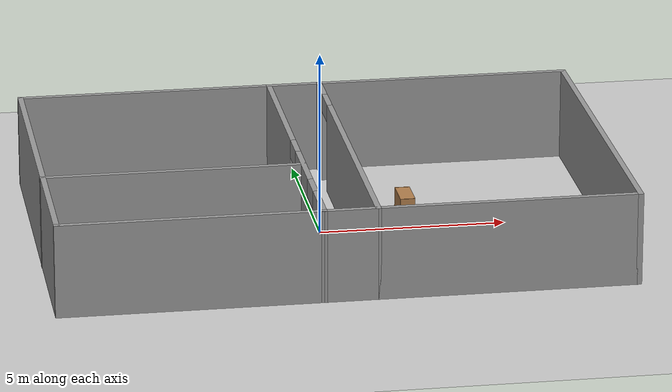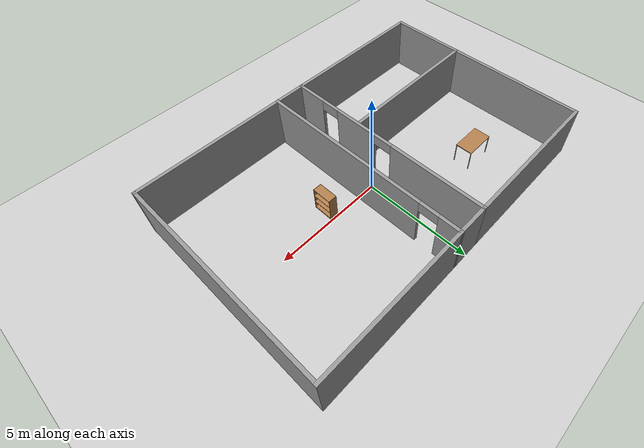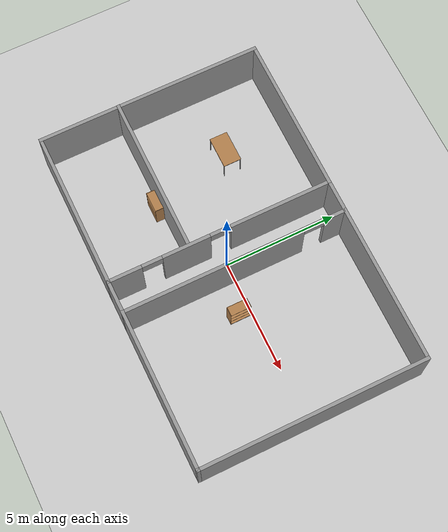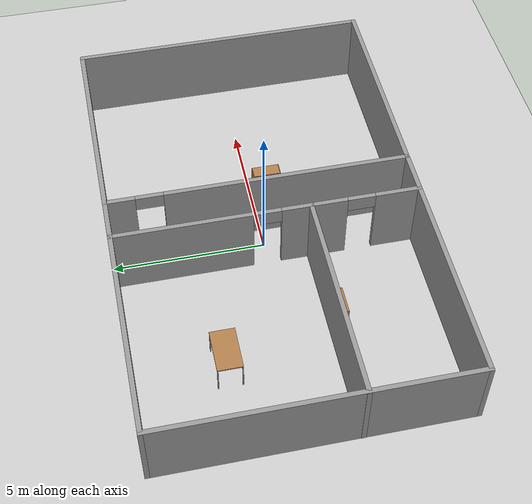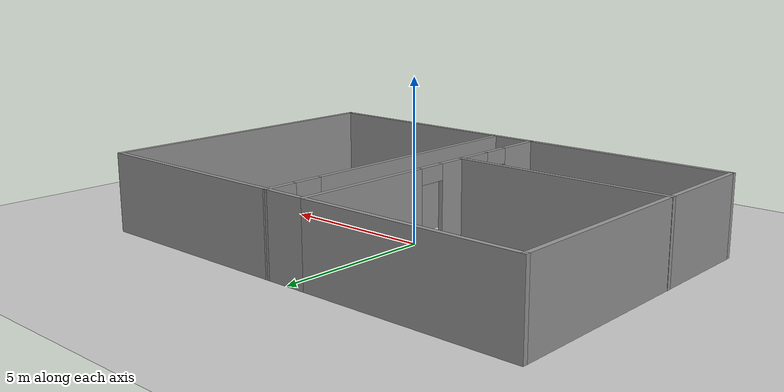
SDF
<sdf version="1.6">
 <world name="default">
  <light name="sun" type="directional">
   <pose>0 0 10 0 -0 0</pose>
   <diffuse>0.8 0.8 0.8 1</diffuse>
   <specular>0.1 0.1 0.1 1</specular>
   <attenuation>
    <range>1000</range>
    <constant>0.9</constant>
    <linear>0.01</linear>
    <quadratic>0.001</quadratic>
   </attenuation>
   <direction>-0.5 0.5 -1</direction>
  </light>
  <model name="ground_plane">
   <static>1</static>
   <link name="link">
    <collision name="collision">
     <geometry><plane><normal>0 0 1</normal><size>100 100</size></plane></geometry>
     <surface><friction><ode><mu>100</mu><mu2>50</mu2></ode></friction></surface>
    </collision>
    <visual name="visual">
     <cast_shadows>0</cast_shadows>
     <geometry><plane><normal>0 0 1</normal><size>100 100</size></plane></geometry>
     <material>
      <script><uri>file://media/materials/scripts/gazebo.material</uri><name>Gazebo/Grey</name></script>
     </material>
    </visual>
   </link>
  </model>
  <gravity>0 0 -9.8</gravity>
  <magnetic_field>6e-06 2.3e-05 -4.2e-05</magnetic_field>
  <atmosphere type="adiabatic"/>
  <physics name="default_physics" default="0" type="ode">
   <max_step_size>0.001</max_step_size>
   <real_time_factor>1</real_time_factor>
   <real_time_update_rate>1000</real_time_update_rate>
  </physics>
  <scene><ambient>0.4 0.4 0.4 1</ambient><background>0.7 0.7 0.7 1</background><shadows>1</shadows></scene>
  <spherical_coordinates>
   <surface_model>EARTH_WGS84</surface_model>
   <latitude_deg>0</latitude_deg>
   <longitude_deg>0</longitude_deg>
   <elevation>0</elevation>
   <heading_deg>0</heading_deg>
  </spherical_coordinates>
  <model name="large_rooms">
   <pose>0.046671 0.023596 0 0 -0 0</pose>
   <link name="Wall_15">
    <pose>-0.693998 -0.00105 0 0 0 -1.57083</pose>
    <visual name="Wall_15_Visual_0">
     <pose>-2.72597 0 1.25 0 -0 0</pose>
     <geometry><box><size>4.54806 0.15 2.5</size></box></geometry>
     <material>
      <script><uri>file://media/materials/scripts/gazebo.material</uri><name>Gazebo/Grey</name></script>
      <ambient>1 1 1 1</ambient>
     </material>
    </visual>
    <collision name="Wall_15_Collision_0">
     <geometry><box><size>4.54806 0.15 2.5</size></box></geometry>
     <pose>-2.72597 0 1.25 0 -0 0</pose>
    </collision>
    <visual name="Wall_15_Visual_1">
     <pose>1.51228 0 1.25 0 -0 0</pose>
     <geometry><box><size>2.12844 0.15 2.5</size></box></geometry>
     <material>
      <script><uri>file://media/materials/scripts/gazebo.material</uri><name>Gazebo/Grey</name></script>
      <ambient>1 1 1 1</ambient>
     </material>
    </visual>
    <collision name="Wall_15_Collision_1">
     <geometry><box><size>2.12844 0.15 2.5</size></box></geometry>
     <pose>1.51228 0 1.25 0 -0 0</pose>
    </collision>
    <visual name="Wall_15_Visual_2">
     <pose>4.23825 0 1.25 0 -0 0</pose>
     <geometry><box><size>1.5235 0.15 2.5</size></box></geometry>
     <material>
      <script><uri>file://media/materials/scripts/gazebo.material</uri><name>Gazebo/Grey</name></script>
      <ambient>1 1 1 1</ambient>
     </material>
    </visual>
    <collision name="Wall_15_Collision_2">
     <geometry><box><size>1.5235 0.15 2.5</size></box></geometry>
     <pose>4.23825 0 1.25 0 -0 0</pose>
    </collision>
    <visual name="Wall_15_Visual_3">
     <pose>-0.001938 0 2.25 0 -0 0</pose>
     <geometry><box><size>0.9 0.15 0.5</size></box></geometry>
     <material>
      <script><uri>file://media/materials/scripts/gazebo.material</uri><name>Gazebo/Grey</name></script>
      <ambient>1 1 1 1</ambient>
     </material>
    </visual>
    <collision name="Wall_15_Collision_3">
     <geometry><box><size>0.9 0.15 0.5</size></box></geometry>
     <pose>-0.001938 0 2.25 0 -0 0</pose>
    </collision>
    <visual name="Wall_15_Visual_4">
     <pose>3.0265 0 2.25 0 -0 0</pose>
     <geometry><box><size>0.9 0.15 0.5</size></box></geometry>
     <material>
      <script><uri>file://media/materials/scripts/gazebo.material</uri><name>Gazebo/Grey</name></script>
      <ambient>1 1 1 1</ambient>
     </material>
    </visual>
    <collision name="Wall_15_Collision_4">
     <geometry><box><size>0.9 0.15 0.5</size></box></geometry>
     <pose>3.0265 0 2.25 0 -0 0</pose>
    </collision>
   </link>
   <link name="Wall_17">
    <pose>0.703787 0.001137 0 0 -0 1.5708</pose>
    <visual name="Wall_17_Visual_0">
     <pose>-0.967925 0 1.25 0 -0 0</pose>
     <geometry><box><size>8.06415 0.15 2.5</size></box></geometry>
     <material>
      <script><uri>file://media/materials/scripts/gazebo.material</uri><name>Gazebo/Grey</name></script>
      <ambient>1 1 1 1</ambient>
     </material>
    </visual>
    <collision name="Wall_17_Collision_0">
     <geometry><box><size>8.06415 0.15 2.5</size></box></geometry>
     <pose>-0.967925 0 1.25 0 -0 0</pose>
    </collision>
    <visual name="Wall_17_Visual_1">
     <pose>4.48208 0 1.25 0 -0 0</pose>
     <geometry><box><size>1.03585 0.15 2.5</size></box></geometry>
     <material>
      <script><uri>file://media/materials/scripts/gazebo.material</uri><name>Gazebo/Grey</name></script>
      <ambient>1 1 1 1</ambient>
     </material>
    </visual>
    <collision name="Wall_17_Collision_1">
     <geometry><box><size>1.03585 0.15 2.5</size></box></geometry>
     <pose>4.48208 0 1.25 0 -0 0</pose>
    </collision>
    <visual name="Wall_17_Visual_2">
     <pose>3.51415 0 2.25 0 -0 0</pose>
     <geometry><box><size>0.9 0.15 0.5</size></box></geometry>
     <material>
      <script><uri>file://media/materials/scripts/gazebo.material</uri><name>Gazebo/Grey</name></script>
      <ambient>1 1 1 1</ambient>
     </material>
    </visual>
    <collision name="Wall_17_Collision_2">
     <geometry><box><size>0.9 0.15 0.5</size></box></geometry>
     <pose>3.51415 0 2.25 0 -0 0</pose>
    </collision>
   </link>
   <link name="Wall_19">
    <collision name="Wall_19_Collision">
     <geometry><box><size>1.5476 0.15 2.5</size></box></geometry>
     <pose>0 0 1.25 0 -0 0</pose>
    </collision>
    <visual name="Wall_19_Visual">
     <pose>0 0 1.25 0 -0 0</pose>
     <geometry><box><size>1.5476 0.15 2.5</size></box></geometry>
     <material>
      <script><uri>file://media/materials/scripts/gazebo.material</uri><name>Gazebo/Grey</name></script>
      <ambient>1 1 1 1</ambient>
     </material>
    </visual>
    <pose>0.004804 -4.925 0 0 -0 0.001621</pose>
   </link>
   <link name="Wall_21">
    <collision name="Wall_21_Collision">
     <geometry><box><size>1.5476 0.15 2.5</size></box></geometry>
     <pose>0 0 1.25 0 -0 0</pose>
    </collision>
    <visual name="Wall_21_Visual">
     <pose>0 0 1.25 0 -0 0</pose>
     <geometry><box><size>1.5476 0.15 2.5</size></box></geometry>
     <material>
      <script><uri>file://media/materials/scripts/gazebo.material</uri><name>Gazebo/Grey</name></script>
      <ambient>1 1 1 1</ambient>
     </material>
    </visual>
    <pose>0.004985 4.92508 0 0 -0 0.001508</pose>
   </link>
   <link name="Wall_23">
    <collision name="Wall_23_Collision">
     <geometry><box><size>7 0.15 2.5</size></box></geometry>
     <pose>0 0 1.25 0 -0 0</pose>
    </collision>
    <visual name="Wall_23_Visual">
     <pose>0 0 1.25 0 -0 0</pose>
     <geometry><box><size>7 0.15 2.5</size></box></geometry>
     <material>
      <script><uri>file://media/materials/scripts/gazebo.material</uri><name>Gazebo/Grey</name></script>
      <ambient>1 1 1 1</ambient>
     </material>
    </visual>
    <pose>4.12879 4.92614 0 0 -0 0</pose>
   </link>
   <link name="Wall_26">
    <collision name="Wall_26_Collision">
     <geometry><box><size>7 0.15 2.5</size></box></geometry>
     <pose>0 0 1.25 0 -0 0</pose>
    </collision>
    <visual name="Wall_26_Visual">
     <pose>0 0 1.25 0 -0 0</pose>
     <geometry><box><size>7 0.15 2.5</size></box></geometry>
     <material>
      <script><uri>file://media/materials/scripts/gazebo.material</uri><name>Gazebo/Grey</name></script>
      <ambient>1 1 1 1</ambient>
     </material>
    </visual>
    <pose>4.12879 -4.92386 0 0 -0 0</pose>
   </link>
   <link name="Wall_28">
    <collision name="Wall_28_Collision">
     <geometry><box><size>10 0.15 2.5</size></box></geometry>
     <pose>0 0 1.25 0 -0 0</pose>
    </collision>
    <visual name="Wall_28_Visual">
     <pose>0 0 1.25 0 -0 0</pose>
     <geometry><box><size>10 0.15 2.5</size></box></geometry>
     <material>
      <script><uri>file://media/materials/scripts/gazebo.material</uri><name>Gazebo/Grey</name></script>
      <ambient>1 1 1 1</ambient>
     </material>
    </visual>
    <pose>7.55379 0.001137 0 0 0 -1.5708</pose>
   </link>
   <link name="Wall_30">
    <collision name="Wall_30_Collision">
     <geometry><box><size>7 0.15 2.5</size></box></geometry>
     <pose>0 0 1.25 0 -0 0</pose>
    </collision>
    <visual name="Wall_30_Visual">
     <pose>0 0 1.25 0 -0 0</pose>
     <geometry><box><size>7 0.15 2.5</size></box></geometry>
     <material>
      <script><uri>file://media/materials/scripts/gazebo.material</uri><name>Gazebo/Grey</name></script>
      <ambient>1 1 1 1</ambient>
     </material>
    </visual>
    <pose>-4.11918 -4.92613 0 0 -0 3.14159</pose>
   </link>
   <link name="Wall_32">
    <collision name="Wall_32_Collision">
     <geometry><box><size>7 0.15 2.5</size></box></geometry>
     <pose>0 0 1.25 0 -0 0</pose>
    </collision>
    <visual name="Wall_32_Visual">
     <pose>0 0 1.25 0 -0 0</pose>
     <geometry><box><size>7 0.15 2.5</size></box></geometry>
     <material>
      <script><uri>file://media/materials/scripts/gazebo.material</uri><name>Gazebo/Grey</name></script>
      <ambient>1 1 1 1</ambient>
     </material>
    </visual>
    <pose>-4.11882 4.92403 0 0 -0 3.14159</pose>
   </link>
   <link name="Wall_33">
    <collision name="Wall_33_Collision">
     <geometry><box><size>10 0.15 2.5</size></box></geometry>
     <pose>0 0 1.25 0 -0 0</pose>
    </collision>
    <visual name="Wall_33_Visual">
     <pose>0 0 1.25 0 -0 0</pose>
     <geometry><box><size>10 0.15 2.5</size></box></geometry>
     <material>
      <script><uri>file://media/materials/scripts/gazebo.material</uri><name>Gazebo/Grey</name></script>
      <ambient>1 1 1 1</ambient>
     </material>
    </visual>
    <pose>-7.54382 -0.00097 0 0 0 -1.5708</pose>
   </link>
   <link name="Wall_35">
    <collision name="Wall_35_Collision">
     <geometry><box><size>7 0.15 2.5</size></box></geometry>
     <pose>0 0 1.25 0 -0 0</pose>
    </collision>
    <visual name="Wall_35_Visual">
     <pose>0 0 1.25 0 -0 0</pose>
     <geometry><box><size>7 0.15 2.5</size></box></geometry>
     <material>
      <script><uri>file://media/materials/scripts/gazebo.material</uri><name>Gazebo/Grey</name></script>
      <ambient>1 1 1 1</ambient>
     </material>
    </visual>
    <pose>-4.12879 -1.40389 0 0 -0 0</pose>
   </link>
   <static>1</static>
  </model>
  <model name="bookshelf">
   <static>1</static>
   <link name="link">
    <inertial><mass>1</mass></inertial>
    <collision name="back">
     <pose>0 0.005 0.6 0 -0 0</pose>
     <geometry><box><size>0.9 0.01 1.2</size></box></geometry>
    </collision>
    <visual name="visual1">
     <pose>0 0.005 0.6 0 -0 0</pose>
     <geometry><box><size>0.9 0.01 1.2</size></box></geometry>
     <material>
      <script><uri>file://media/materials/scripts/gazebo.material</uri><name>Gazebo/Wood</name></script>
     </material>
    </visual>
    <collision name="left_side">
     <pose>0.45 -0.195 0.6 0 -0 0</pose>
     <geometry><box><size>0.02 0.4 1.2</size></box></geometry>
    </collision>
    <visual name="visual2">
     <pose>0.45 -0.195 0.6 0 -0 0</pose>
     <geometry><box><size>0.02 0.4 1.2</size></box></geometry>
     <material>
      <script><uri>file://media/materials/scripts/gazebo.material</uri><name>Gazebo/Wood</name></script>
     </material>
    </visual>
    <collision name="right_side">
     <pose>-0.45 -0.195 0.6 0 -0 0</pose>
     <geometry><box><size>0.02 0.4 1.2</size></box></geometry>
    </collision>
    <visual name="visual3">
     <pose>-0.45 -0.195 0.6 0 -0 0</pose>
     <geometry><box><size>0.02 0.4 1.2</size></box></geometry>
     <material>
      <script><uri>file://media/materials/scripts/gazebo.material</uri><name>Gazebo/Wood</name></script>
     </material>
    </visual>
    <collision name="bottom">
     <pose>0 -0.195 0.03 0 -0 0</pose>
     <geometry><box><size>0.88 0.4 0.06</size></box></geometry>
    </collision>
    <visual name="visual4">
     <pose>0 -0.195 0.03 0 -0 0</pose>
     <geometry><box><size>0.88 0.4 0.06</size></box></geometry>
     <material>
      <script><uri>file://media/materials/scripts/gazebo.material</uri><name>Gazebo/Wood</name></script>
     </material>
    </visual>
    <collision name="top">
     <pose>0 -0.195 1.19 0 -0 0</pose>
     <geometry><box><size>0.88 0.4 0.02</size></box></geometry>
    </collision>
    <visual name="visual5">
     <pose>0 -0.195 1.19 0 -0 0</pose>
     <geometry><box><size>0.88 0.4 0.02</size></box></geometry>
     <material>
      <script><uri>file://media/materials/scripts/gazebo.material</uri><name>Gazebo/Wood</name></script>
     </material>
    </visual>
    <collision name="low_shelf">
     <pose>0 -0.195 0.43 0 -0 0</pose>
     <geometry><box><size>0.88 0.4 0.02</size></box></geometry>
    </collision>
    <visual name="visual6">
     <pose>0 -0.195 0.43 0 -0 0</pose>
     <geometry><box><size>0.88 0.4 0.02</size></box></geometry>
     <material>
      <script><uri>file://media/materials/scripts/gazebo.material</uri><name>Gazebo/Wood</name></script>
     </material>
    </visual>
    <collision name="high_shelf">
     <pose>0 -0.195 0.8 0 -0 0</pose>
     <geometry><box><size>0.88 0.4 0.02</size></box></geometry>
    </collision>
    <visual name="visual7">
     <pose>0 -0.195 0.8 0 -0 0</pose>
     <geometry><box><size>0.88 0.4 0.02</size></box></geometry>
     <material>
      <script><uri>file://media/materials/scripts/gazebo.material</uri><name>Gazebo/Wood</name></script>
     </material>
    </visual>
   </link>
   <pose>-3.50064 -1.43152 0 0 -0 0</pose>
  </model>
  <model name="table">
   <static>0</static>
   <link name="link">
    <collision name="surface">
     <pose>0 0 1 0 -0 0</pose>
     <geometry><box><size>1.5 0.8 0.03</size></box></geometry>
     <surface><friction><ode><mu>0.6</mu><mu2>0.6</mu2></ode></friction></surface>
    </collision>
    <visual name="visual1">
     <pose>0 0 1 0 -0 0</pose>
     <geometry><box><size>1.4 0.8 0.04</size></box></geometry>
     <material>
      <script><uri>file://media/materials/scripts/gazebo.material</uri><name>Gazebo/Wood</name></script>
     </material>
    </visual>
    <collision name="front_left_leg">
     <pose>0.68 0.38 0.5 0 -0 0</pose>
     <geometry><cylinder><radius>0.02</radius><length>1</length></cylinder></geometry>
    </collision>
    <visual name="front_left_leg">
     <pose>0.68 0.38 0.5 0 -0 0</pose>
     <geometry><cylinder><radius>0.02</radius><length>1</length></cylinder></geometry>
     <material>
      <script><uri>file://media/materials/scripts/gazebo.material</uri><name>Gazebo/Grey</name></script>
     </material>
    </visual>
    <collision name="front_right_leg">
     <pose>0.68 -0.38 0.5 0 -0 0</pose>
     <geometry><cylinder><radius>0.02</radius><length>1</length></cylinder></geometry>
    </collision>
    <visual name="front_right_leg">
     <pose>0.68 -0.38 0.5 0 -0 0</pose>
     <geometry><cylinder><radius>0.02</radius><length>1</length></cylinder></geometry>
     <material>
      <script><uri>file://media/materials/scripts/gazebo.material</uri><name>Gazebo/Grey</name></script>
     </material>
    </visual>
    <collision name="back_right_leg">
     <pose>-0.68 -0.38 0.5 0 -0 0</pose>
     <geometry><cylinder><radius>0.02</radius><length>1</length></cylinder></geometry>
    </collision>
    <visual name="back_right_leg">
     <pose>-0.68 -0.38 0.5 0 -0 0</pose>
     <geometry><cylinder><radius>0.02</radius><length>1</length></cylinder></geometry>
     <material>
      <script><uri>file://media/materials/scripts/gazebo.material</uri><name>Gazebo/Grey</name></script>
     </material>
    </visual>
    <collision name="back_left_leg">
     <pose>-0.68 0.38 0.5 0 -0 0</pose>
     <geometry><cylinder><radius>0.02</radius><length>1</length></cylinder></geometry>
    </collision>
    <visual name="back_left_leg">
     <pose>-0.68 0.38 0.5 0 -0 0</pose>
     <geometry><cylinder><radius>0.02</radius><length>1</length></cylinder></geometry>
     <material>
      <script><uri>file://media/materials/scripts/gazebo.material</uri><name>Gazebo/Grey</name></script>
     </material>
    </visual>
    <inertial>
     <inertia><ixx>1</ixx><ixy>0</ixy><ixz>0</ixz><iyy>1</iyy><iyz>0</iyz><izz>1</izz></inertia>
     <mass>1</mass>
    </inertial>
   </link>
   <pose>-4.41552 2.07282 -2e-06 -1e-06 0 0</pose>
  </model>
  <model name="bookshelf_0">
   <static>1</static>
   <link name="link">
    <inertial><mass>1</mass></inertial>
    <collision name="back">
     <pose>0 0.005 0.6 0 -0 0</pose>
     <geometry><box><size>0.9 0.01 1.2</size></box></geometry>
    </collision>
    <visual name="visual1">
     <pose>0 0.005 0.6 0 -0 0</pose>
     <geometry><box><size>0.9 0.01 1.2</size></box></geometry>
     <material>
      <script><uri>file://media/materials/scripts/gazebo.material</uri><name>Gazebo/Wood</name></script>
     </material>
    </visual>
    <collision name="left_side">
     <pose>0.45 -0.195 0.6 0 -0 0</pose>
     <geometry><box><size>0.02 0.4 1.2</size></box></geometry>
    </collision>
    <visual name="visual2">
     <pose>0.45 -0.195 0.6 0 -0 0</pose>
     <geometry><box><size>0.02 0.4 1.2</size></box></geometry>
     <material>
      <script><uri>file://media/materials/scripts/gazebo.material</uri><name>Gazebo/Wood</name></script>
     </material>
    </visual>
    <collision name="right_side">
     <pose>-0.45 -0.195 0.6 0 -0 0</pose>
     <geometry><box><size>0.02 0.4 1.2</size></box></geometry>
    </collision>
    <visual name="visual3">
     <pose>-0.45 -0.195 0.6 0 -0 0</pose>
     <geometry><box><size>0.02 0.4 1.2</size></box></geometry>
     <material>
      <script><uri>file://media/materials/scripts/gazebo.material</uri><name>Gazebo/Wood</name></script>
     </material>
    </visual>
    <collision name="bottom">
     <pose>0 -0.195 0.03 0 -0 0</pose>
     <geometry><box><size>0.88 0.4 0.06</size></box></geometry>
    </collision>
    <visual name="visual4">
     <pose>0 -0.195 0.03 0 -0 0</pose>
     <geometry><box><size>0.88 0.4 0.06</size></box></geometry>
     <material>
      <script><uri>file://media/materials/scripts/gazebo.material</uri><name>Gazebo/Wood</name></script>
     </material>
    </visual>
    <collision name="top">
     <pose>0 -0.195 1.19 0 -0 0</pose>
     <geometry><box><size>0.88 0.4 0.02</size></box></geometry>
    </collision>
    <visual name="visual5">
     <pose>0 -0.195 1.19 0 -0 0</pose>
     <geometry><box><size>0.88 0.4 0.02</size></box></geometry>
     <material>
      <script><uri>file://media/materials/scripts/gazebo.material</uri><name>Gazebo/Wood</name></script>
     </material>
    </visual>
    <collision name="low_shelf">
     <pose>0 -0.195 0.43 0 -0 0</pose>
     <geometry><box><size>0.88 0.4 0.02</size></box></geometry>
    </collision>
    <visual name="visual6">
     <pose>0 -0.195 0.43 0 -0 0</pose>
     <geometry><box><size>0.88 0.4 0.02</size></box></geometry>
     <material>
      <script><uri>file://media/materials/scripts/gazebo.material</uri><name>Gazebo/Wood</name></script>
     </material>
    </visual>
    <collision name="high_shelf">
     <pose>0 -0.195 0.8 0 -0 0</pose>
     <geometry><box><size>0.88 0.4 0.02</size></box></geometry>
    </collision>
    <visual name="visual7">
     <pose>0 -0.195 0.8 0 -0 0</pose>
     <geometry><box><size>0.88 0.4 0.02</size></box></geometry>
     <material>
      <script><uri>file://media/materials/scripts/gazebo.material</uri><name>Gazebo/Wood</name></script>
     </material>
    </visual>
   </link>
   <pose>2.01392 -0.53092 0 0 -0 1.57096</pose>
  </model>
 </world>
</sdf>
